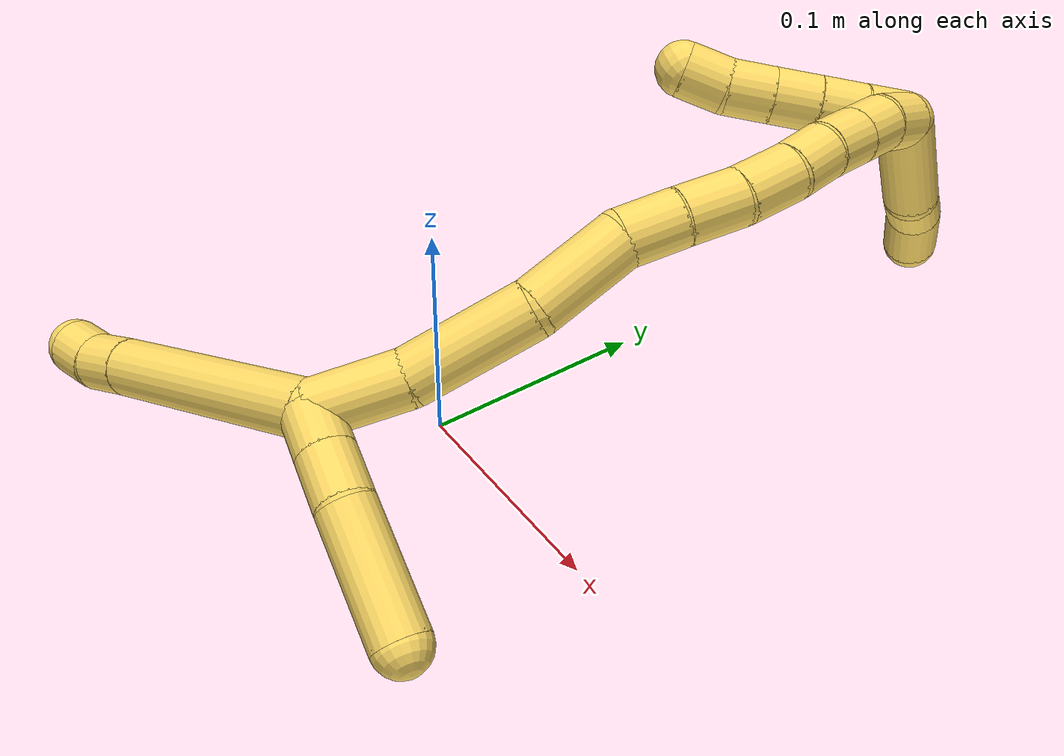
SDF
<sdf version="1.7">
 <world name="default">
  <model name="5">
   <static>0</static>
   <link name="5">
    <collision name="collision-cylinder-e_1_2_8">
     <pose>-0.028955 -0.026042 0.037899 0.602047 -0.561954 -0.178727</pose>
     <geometry><cylinder><radius>0.0125</radius><length>0.108681</length></cylinder></geometry>
     <surface>
      <friction><ode><mu>1.16</mu><mu2>1.16</mu2><slip1>0</slip1><slip2>0</slip2></ode></friction>
      <contact><ode><kp>1e+06</kp><kd>1</kd><max_vel>0</max_vel><min_depth>0.001</min_depth></ode></contact>
     </surface>
    </collision>
    <visual name="visual-cylinder-e_1_2_8">
     <pose>-0.028955 -0.026042 0.037899 0.602047 -0.561954 -0.178727</pose>
     <geometry><cylinder><radius>0.0125</radius><length>0.108681</length></cylinder></geometry>
     <material><ambient>1 0.858824 0.4 1</ambient></material>
    </visual>
    <collision name="collision-cylinder-e_2_8_9">
     <pose>-0.063923 -0.057085 0.082998 0.60706 -0.6012 -0.193578</pose>
     <geometry><cylinder><radius>0.0125</radius><length>0.021262</length></cylinder></geometry>
     <surface>
      <friction><ode><mu>1.16</mu><mu2>1.16</mu2><slip1>0</slip1><slip2>0</slip2></ode></friction>
      <contact><ode><kp>1e+06</kp><kd>1</kd><max_vel>0</max_vel><min_depth>0.001</min_depth></ode></contact>
     </surface>
    </collision>
    <visual name="visual-cylinder-e_2_8_9">
     <pose>-0.063923 -0.057085 0.082998 0.60706 -0.6012 -0.193578</pose>
     <geometry><cylinder><radius>0.0125</radius><length>0.021262</length></cylinder></geometry>
     <material><ambient>1 0.858824 0.4 1</ambient></material>
    </visual>
    <collision name="collision-cylinder-e_3_9_6">
     <pose>-0.074474 -0.065359 0.098522 0.374582 -0.469543 -0.090594</pose>
     <geometry><cylinder><radius>0.0125</radius><length>0.020057</length></cylinder></geometry>
     <surface>
      <friction><ode><mu>1.16</mu><mu2>1.16</mu2><slip1>0</slip1><slip2>0</slip2></ode></friction>
      <contact><ode><kp>1e+06</kp><kd>1</kd><max_vel>0</max_vel><min_depth>0.001</min_depth></ode></contact>
     </surface>
    </collision>
    <visual name="visual-cylinder-e_3_9_6">
     <pose>-0.074474 -0.065359 0.098522 0.374582 -0.469543 -0.090594</pose>
     <geometry><cylinder><radius>0.0125</radius><length>0.020057</length></cylinder></geometry>
     <material><ambient>1 0.858824 0.4 1</ambient></material>
    </visual>
    <collision name="collision-cylinder-e_1_2_10">
     <pose>-0.000169 9.2e-05 -0.010295 -3.13265 -0.016432 2.14452</pose>
     <geometry><cylinder><radius>0.0125</radius><length>0.020594</length></cylinder></geometry>
     <surface>
      <friction><ode><mu>1.16</mu><mu2>1.16</mu2><slip1>0</slip1><slip2>0</slip2></ode></friction>
      <contact><ode><kp>1e+06</kp><kd>1</kd><max_vel>0</max_vel><min_depth>0.001</min_depth></ode></contact>
     </surface>
    </collision>
    <visual name="visual-cylinder-e_1_2_10">
     <pose>-0.000169 9.2e-05 -0.010295 -3.13265 -0.016432 2.14452</pose>
     <geometry><cylinder><radius>0.0125</radius><length>0.020594</length></cylinder></geometry>
     <material><ambient>1 0.858824 0.4 1</ambient></material>
    </visual>
    <collision name="collision-cylinder-e_2_10_11">
     <pose>-0.000564 0.000354 -0.03219 -3.12695 -0.01944 1.85047</pose>
     <geometry><cylinder><radius>0.0125</radius><length>0.023206</length></cylinder></geometry>
     <surface>
      <friction><ode><mu>1.16</mu><mu2>1.16</mu2><slip1>0</slip1><slip2>0</slip2></ode></friction>
      <contact><ode><kp>1e+06</kp><kd>1</kd><max_vel>0</max_vel><min_depth>0.001</min_depth></ode></contact>
     </surface>
    </collision>
    <visual name="visual-cylinder-e_2_10_11">
     <pose>-0.000564 0.000354 -0.03219 -3.12695 -0.01944 1.85047</pose>
     <geometry><cylinder><radius>0.0125</radius><length>0.023206</length></cylinder></geometry>
     <material><ambient>1 0.858824 0.4 1</ambient></material>
    </visual>
    <collision name="collision-cylinder-e_3_11_5">
     <pose>-0.00553 0.00264 -0.071406 -3.06512 -0.169503 2.29538</pose>
     <geometry><cylinder><radius>0.0125</radius><length>0.0562</length></cylinder></geometry>
     <surface>
      <friction><ode><mu>1.16</mu><mu2>1.16</mu2><slip1>0</slip1><slip2>0</slip2></ode></friction>
      <contact><ode><kp>1e+06</kp><kd>1</kd><max_vel>0</max_vel><min_depth>0.001</min_depth></ode></contact>
     </surface>
    </collision>
    <visual name="visual-cylinder-e_3_11_5">
     <pose>-0.00553 0.00264 -0.071406 -3.06512 -0.169503 2.29538</pose>
     <geometry><cylinder><radius>0.0125</radius><length>0.0562</length></cylinder></geometry>
     <material><ambient>1 0.858824 0.4 1</ambient></material>
    </visual>
    <collision name="collision-cylinder-e_1_2_12">
     <pose>0.007813 0.018637 -0.002463 -1.70219 0.393873 -0.447626</pose>
     <geometry><cylinder><radius>0.0125</radius><length>0.040716</length></cylinder></geometry>
     <surface>
      <friction><ode><mu>1.16</mu><mu2>1.16</mu2><slip1>0</slip1><slip2>0</slip2></ode></friction>
      <contact><ode><kp>1e+06</kp><kd>1</kd><max_vel>0</max_vel><min_depth>0.001</min_depth></ode></contact>
     </surface>
    </collision>
    <visual name="visual-cylinder-e_1_2_12">
     <pose>0.007813 0.018637 -0.002463 -1.70219 0.393873 -0.447626</pose>
     <geometry><cylinder><radius>0.0125</radius><length>0.040716</length></cylinder></geometry>
     <material><ambient>1 0.858824 0.4 1</ambient></material>
    </visual>
    <collision name="collision-cylinder-e_2_12_13">
     <pose>0.029632 0.060923 -0.004226 -1.5412 0.534537 -0.519649</pose>
     <geometry><cylinder><radius>0.0125</radius><length>0.054989</length></cylinder></geometry>
     <surface>
      <friction><ode><mu>1.16</mu><mu2>1.16</mu2><slip1>0</slip1><slip2>0</slip2></ode></friction>
      <contact><ode><kp>1e+06</kp><kd>1</kd><max_vel>0</max_vel><min_depth>0.001</min_depth></ode></contact>
     </surface>
    </collision>
    <visual name="visual-cylinder-e_2_12_13">
     <pose>0.029632 0.060923 -0.004226 -1.5412 0.534537 -0.519649</pose>
     <geometry><cylinder><radius>0.0125</radius><length>0.054989</length></cylinder></geometry>
     <material><ambient>1 0.858824 0.4 1</ambient></material>
    </visual>
    <collision name="collision-cylinder-e_3_13_14">
     <pose>0.051863 0.104091 0.002703 -1.26191 0.381695 -0.280441</pose>
     <geometry><cylinder><radius>0.0125</radius><length>0.044155</length></cylinder></geometry>
     <surface>
      <friction><ode><mu>1.16</mu><mu2>1.16</mu2><slip1>0</slip1><slip2>0</slip2></ode></friction>
      <contact><ode><kp>1e+06</kp><kd>1</kd><max_vel>0</max_vel><min_depth>0.001</min_depth></ode></contact>
     </surface>
    </collision>
    <visual name="visual-cylinder-e_3_13_14">
     <pose>0.051863 0.104091 0.002703 -1.26191 0.381695 -0.280441</pose>
     <geometry><cylinder><radius>0.0125</radius><length>0.044155</length></cylinder></geometry>
     <material><ambient>1 0.858824 0.4 1</ambient></material>
    </visual>
    <collision name="collision-cylinder-e_4_14_15">
     <pose>0.063326 0.135954 0.009133 -1.55443 0.256553 -0.252433</pose>
     <geometry><cylinder><radius>0.0125</radius><length>0.025528</length></cylinder></geometry>
     <surface>
      <friction><ode><mu>1.16</mu><mu2>1.16</mu2><slip1>0</slip1><slip2>0</slip2></ode></friction>
      <contact><ode><kp>1e+06</kp><kd>1</kd><max_vel>0</max_vel><min_depth>0.001</min_depth></ode></contact>
     </surface>
    </collision>
    <visual name="visual-cylinder-e_4_14_15">
     <pose>0.063326 0.135954 0.009133 -1.55443 0.256553 -0.252433</pose>
     <geometry><cylinder><radius>0.0125</radius><length>0.025528</length></cylinder></geometry>
     <material><ambient>1 0.858824 0.4 1</ambient></material>
    </visual>
    <collision name="collision-cylinder-e_5_15_16">
     <pose>0.068801 0.161333 0.009935 -1.52481 0.169725 -0.162128</pose>
     <geometry><cylinder><radius>0.0125</radius><length>0.026477</length></cylinder></geometry>
     <surface>
      <friction><ode><mu>1.16</mu><mu2>1.16</mu2><slip1>0</slip1><slip2>0</slip2></ode></friction>
      <contact><ode><kp>1e+06</kp><kd>1</kd><max_vel>0</max_vel><min_depth>0.001</min_depth></ode></contact>
     </surface>
    </collision>
    <visual name="visual-cylinder-e_5_15_16">
     <pose>0.068801 0.161333 0.009935 -1.52481 0.169725 -0.162128</pose>
     <geometry><cylinder><radius>0.0125</radius><length>0.026477</length></cylinder></geometry>
     <material><ambient>1 0.858824 0.4 1</ambient></material>
    </visual>
    <collision name="collision-cylinder-e_6_16_17">
     <pose>0.07286 0.186965 0.012994 -1.37803 0.141134 -0.116312</pose>
     <geometry><cylinder><radius>0.0125</radius><length>0.025928</length></cylinder></geometry>
     <surface>
      <friction><ode><mu>1.16</mu><mu2>1.16</mu2><slip1>0</slip1><slip2>0</slip2></ode></friction>
      <contact><ode><kp>1e+06</kp><kd>1</kd><max_vel>0</max_vel><min_depth>0.001</min_depth></ode></contact>
     </surface>
    </collision>
    <visual name="visual-cylinder-e_6_16_17">
     <pose>0.07286 0.186965 0.012994 -1.37803 0.141134 -0.116312</pose>
     <geometry><cylinder><radius>0.0125</radius><length>0.025928</length></cylinder></geometry>
     <material><ambient>1 0.858824 0.4 1</ambient></material>
    </visual>
    <collision name="collision-cylinder-e_7_17_18">
     <pose>0.075162 0.209318 0.018906 -1.23063 0.04618 -0.032646</pose>
     <geometry><cylinder><radius>0.0125</radius><length>0.020721</length></cylinder></geometry>
     <surface>
      <friction><ode><mu>1.16</mu><mu2>1.16</mu2><slip1>0</slip1><slip2>0</slip2></ode></friction>
      <contact><ode><kp>1e+06</kp><kd>1</kd><max_vel>0</max_vel><min_depth>0.001</min_depth></ode></contact>
     </surface>
    </collision>
    <visual name="visual-cylinder-e_7_17_18">
     <pose>0.075162 0.209318 0.018906 -1.23063 0.04618 -0.032646</pose>
     <geometry><cylinder><radius>0.0125</radius><length>0.020721</length></cylinder></geometry>
     <material><ambient>1 0.858824 0.4 1</ambient></material>
    </visual>
    <collision name="collision-cylinder-e_8_18_19">
     <pose>0.074387 0.229085 0.025765 -1.24277 -0.117959 0.084506</pose>
     <geometry><cylinder><radius>0.0125</radius><length>0.021296</length></cylinder></geometry>
     <surface>
      <friction><ode><mu>1.16</mu><mu2>1.16</mu2><slip1>0</slip1><slip2>0</slip2></ode></friction>
      <contact><ode><kp>1e+06</kp><kd>1</kd><max_vel>0</max_vel><min_depth>0.001</min_depth></ode></contact>
     </surface>
    </collision>
    <visual name="visual-cylinder-e_8_18_19">
     <pose>0.074387 0.229085 0.025765 -1.24277 -0.117959 0.084506</pose>
     <geometry><cylinder><radius>0.0125</radius><length>0.021296</length></cylinder></geometry>
     <material><ambient>1 0.858824 0.4 1</ambient></material>
    </visual>
    <collision name="collision-cylinder-e_9_19_20">
     <pose>0.071985 0.248507 0.032387 -1.24162 -0.115017 0.082297</pose>
     <geometry><cylinder><radius>0.0125</radius><length>0.020023</length></cylinder></geometry>
     <surface>
      <friction><ode><mu>1.16</mu><mu2>1.16</mu2><slip1>0</slip1><slip2>0</slip2></ode></friction>
      <contact><ode><kp>1e+06</kp><kd>1</kd><max_vel>0</max_vel><min_depth>0.001</min_depth></ode></contact>
     </surface>
    </collision>
    <visual name="visual-cylinder-e_9_19_20">
     <pose>0.071985 0.248507 0.032387 -1.24162 -0.115017 0.082297</pose>
     <geometry><cylinder><radius>0.0125</radius><length>0.020023</length></cylinder></geometry>
     <material><ambient>1 0.858824 0.4 1</ambient></material>
    </visual>
    <collision name="collision-cylinder-e_10_20_1">
     <pose>0.067764 0.267249 0.037877 -1.33161 -0.309564 0.243892</pose>
     <geometry><cylinder><radius>0.0125</radius><length>0.020167</length></cylinder></geometry>
     <surface>
      <friction><ode><mu>1.16</mu><mu2>1.16</mu2><slip1>0</slip1><slip2>0</slip2></ode></friction>
      <contact><ode><kp>1e+06</kp><kd>1</kd><max_vel>0</max_vel><min_depth>0.001</min_depth></ode></contact>
     </surface>
    </collision>
    <visual name="visual-cylinder-e_10_20_1">
     <pose>0.067764 0.267249 0.037877 -1.33161 -0.309564 0.243892</pose>
     <geometry><cylinder><radius>0.0125</radius><length>0.020167</length></cylinder></geometry>
     <material><ambient>1 0.858824 0.4 1</ambient></material>
    </visual>
    <collision name="collision-cylinder-e_1_1_21">
     <pose>0.065067 0.267328 0.043928 1.18335 0.03747 0.025181</pose>
     <geometry><cylinder><radius>0.0125</radius><length>0.02</length></cylinder></geometry>
     <surface>
      <friction><ode><mu>1.16</mu><mu2>1.16</mu2><slip1>0</slip1><slip2>0</slip2></ode></friction>
      <contact><ode><kp>1e+06</kp><kd>1</kd><max_vel>0</max_vel><min_depth>0.001</min_depth></ode></contact>
     </surface>
    </collision>
    <visual name="visual-cylinder-e_1_1_21">
     <pose>0.065067 0.267328 0.043928 1.18335 0.03747 0.025181</pose>
     <geometry><cylinder><radius>0.0125</radius><length>0.02</length></cylinder></geometry>
     <material><ambient>1 0.858824 0.4 1</ambient></material>
    </visual>
    <collision name="collision-cylinder-e_2_21_22">
     <pose>0.065003 0.249274 0.052431 1.07796 -0.043884 -0.026247</pose>
     <geometry><cylinder><radius>0.0125</radius><length>0.02</length></cylinder></geometry>
     <surface>
      <friction><ode><mu>1.16</mu><mu2>1.16</mu2><slip1>0</slip1><slip2>0</slip2></ode></friction>
      <contact><ode><kp>1e+06</kp><kd>1</kd><max_vel>0</max_vel><min_depth>0.001</min_depth></ode></contact>
     </surface>
    </collision>
    <visual name="visual-cylinder-e_2_21_22">
     <pose>0.065003 0.249274 0.052431 1.07796 -0.043884 -0.026247</pose>
     <geometry><cylinder><radius>0.0125</radius><length>0.02</length></cylinder></geometry>
     <material><ambient>1 0.858824 0.4 1</ambient></material>
    </visual>
    <collision name="collision-cylinder-e_3_22_23">
     <pose>0.063924 0.23179 0.062076 1.05541 -0.064079 -0.037356</pose>
     <geometry><cylinder><radius>0.0125</radius><length>0.02</length></cylinder></geometry>
     <surface>
      <friction><ode><mu>1.16</mu><mu2>1.16</mu2><slip1>0</slip1><slip2>0</slip2></ode></friction>
      <contact><ode><kp>1e+06</kp><kd>1</kd><max_vel>0</max_vel><min_depth>0.001</min_depth></ode></contact>
     </surface>
    </collision>
    <visual name="visual-cylinder-e_3_22_23">
     <pose>0.063924 0.23179 0.062076 1.05541 -0.064079 -0.037356</pose>
     <geometry><cylinder><radius>0.0125</radius><length>0.02</length></cylinder></geometry>
     <material><ambient>1 0.858824 0.4 1</ambient></material>
    </visual>
    <collision name="collision-cylinder-e_4_23_24">
     <pose>0.062654 0.214453 0.071966 1.04935 -0.062964 -0.036451</pose>
     <geometry><cylinder><radius>0.0125</radius><length>0.02</length></cylinder></geometry>
     <surface>
      <friction><ode><mu>1.16</mu><mu2>1.16</mu2><slip1>0</slip1><slip2>0</slip2></ode></friction>
      <contact><ode><kp>1e+06</kp><kd>1</kd><max_vel>0</max_vel><min_depth>0.001</min_depth></ode></contact>
     </surface>
    </collision>
    <visual name="visual-cylinder-e_4_23_24">
     <pose>0.062654 0.214453 0.071966 1.04935 -0.062964 -0.036451</pose>
     <geometry><cylinder><radius>0.0125</radius><length>0.02</length></cylinder></geometry>
     <material><ambient>1 0.858824 0.4 1</ambient></material>
    </visual>
    <collision name="collision-cylinder-e_5_24_4">
     <pose>0.062572 0.198014 0.08319 0.894125 0.054699 0.02623</pose>
     <geometry><cylinder><radius>0.0125</radius><length>0.02</length></cylinder></geometry>
     <surface>
      <friction><ode><mu>1.16</mu><mu2>1.16</mu2><slip1>0</slip1><slip2>0</slip2></ode></friction>
      <contact><ode><kp>1e+06</kp><kd>1</kd><max_vel>0</max_vel><min_depth>0.001</min_depth></ode></contact>
     </surface>
    </collision>
    <visual name="visual-cylinder-e_5_24_4">
     <pose>0.062572 0.198014 0.08319 0.894125 0.054699 0.02623</pose>
     <geometry><cylinder><radius>0.0125</radius><length>0.02</length></cylinder></geometry>
     <material><ambient>1 0.858824 0.4 1</ambient></material>
    </visual>
    <collision name="collision-cylinder-e_1_1_25">
     <pose>0.04164 0.287341 0.036252 -1.91856 -1.10995 1.44801</pose>
     <geometry><cylinder><radius>0.0125</radius><length>0.051476</length></cylinder></geometry>
     <surface>
      <friction><ode><mu>1.16</mu><mu2>1.16</mu2><slip1>0</slip1><slip2>0</slip2></ode></friction>
      <contact><ode><kp>1e+06</kp><kd>1</kd><max_vel>0</max_vel><min_depth>0.001</min_depth></ode></contact>
     </surface>
    </collision>
    <visual name="visual-cylinder-e_1_1_25">
     <pose>0.04164 0.287341 0.036252 -1.91856 -1.10995 1.44801</pose>
     <geometry><cylinder><radius>0.0125</radius><length>0.051476</length></cylinder></geometry>
     <material><ambient>1 0.858824 0.4 1</ambient></material>
    </visual>
    <collision name="collision-cylinder-e_2_25_26">
     <pose>0.010146 0.303936 0.03368 -1.34685 -0.954084 0.782248</pose>
     <geometry><cylinder><radius>0.0125</radius><length>0.020694</length></cylinder></geometry>
     <surface>
      <friction><ode><mu>1.16</mu><mu2>1.16</mu2><slip1>0</slip1><slip2>0</slip2></ode></friction>
      <contact><ode><kp>1e+06</kp><kd>1</kd><max_vel>0</max_vel><min_depth>0.001</min_depth></ode></contact>
     </surface>
    </collision>
    <visual name="visual-cylinder-e_2_25_26">
     <pose>0.010146 0.303936 0.03368 -1.34685 -0.954084 0.782248</pose>
     <geometry><cylinder><radius>0.0125</radius><length>0.020694</length></cylinder></geometry>
     <material><ambient>1 0.858824 0.4 1</ambient></material>
    </visual>
    <collision name="collision-cylinder-e_3_26_3">
     <pose>-0.011165 0.315062 0.035058 -1.56153 -1.18077 1.17222</pose>
     <geometry><cylinder><radius>0.0125</radius><length>0.02783</length></cylinder></geometry>
     <surface>
      <friction><ode><mu>1.16</mu><mu2>1.16</mu2><slip1>0</slip1><slip2>0</slip2></ode></friction>
      <contact><ode><kp>1e+06</kp><kd>1</kd><max_vel>0</max_vel><min_depth>0.001</min_depth></ode></contact>
     </surface>
    </collision>
    <visual name="visual-cylinder-e_3_26_3">
     <pose>-0.011165 0.315062 0.035058 -1.56153 -1.18077 1.17222</pose>
     <geometry><cylinder><radius>0.0125</radius><length>0.02783</length></cylinder></geometry>
     <material><ambient>1 0.858824 0.4 1</ambient></material>
    </visual>
    <collision name="collision-sphere-3">
     <pose>-0.024035 0.320352 0.035107 0 -0 0</pose>
     <geometry><sphere><radius>0.0125</radius></sphere></geometry>
     <surface>
      <friction><ode><mu>1.16</mu><mu2>1.16</mu2><slip1>0</slip1><slip2>0</slip2></ode></friction>
      <contact><ode><kp>1e+06</kp><kd>1</kd><max_vel>0</max_vel><min_depth>0.001</min_depth></ode></contact>
     </surface>
    </collision>
    <visual name="visual-sphere-3">
     <pose>-0.024035 0.320352 0.035107 0 -0 0</pose>
     <geometry><sphere><radius>0.0125</radius></sphere></geometry>
     <material><ambient>1 0.858824 0.4 1</ambient></material>
    </visual>
    <collision name="collision-sphere-26">
     <pose>0.001705 0.309771 0.035009 0 -0 0</pose>
     <geometry><sphere><radius>0.0125</radius></sphere></geometry>
     <surface>
      <friction><ode><mu>1.16</mu><mu2>1.16</mu2><slip1>0</slip1><slip2>0</slip2></ode></friction>
      <contact><ode><kp>1e+06</kp><kd>1</kd><max_vel>0</max_vel><min_depth>0.001</min_depth></ode></contact>
     </surface>
    </collision>
    <visual name="visual-sphere-26">
     <pose>0.001705 0.309771 0.035009 0 -0 0</pose>
     <geometry><sphere><radius>0.0125</radius></sphere></geometry>
     <material><ambient>1 0.858824 0.4 1</ambient></material>
    </visual>
    <collision name="collision-sphere-25">
     <pose>0.018587 0.298102 0.032351 0 -0 0</pose>
     <geometry><sphere><radius>0.0125</radius></sphere></geometry>
     <surface>
      <friction><ode><mu>1.16</mu><mu2>1.16</mu2><slip1>0</slip1><slip2>0</slip2></ode></friction>
      <contact><ode><kp>1e+06</kp><kd>1</kd><max_vel>0</max_vel><min_depth>0.001</min_depth></ode></contact>
     </surface>
    </collision>
    <visual name="visual-sphere-25">
     <pose>0.018587 0.298102 0.032351 0 -0 0</pose>
     <geometry><sphere><radius>0.0125</radius></sphere></geometry>
     <material><ambient>1 0.858824 0.4 1</ambient></material>
    </visual>
    <collision name="collision-sphere-4">
     <pose>0.063118 0.190229 0.089443 0 -0 0</pose>
     <geometry><sphere><radius>0.0125</radius></sphere></geometry>
     <surface>
      <friction><ode><mu>1.16</mu><mu2>1.16</mu2><slip1>0</slip1><slip2>0</slip2></ode></friction>
      <contact><ode><kp>1e+06</kp><kd>1</kd><max_vel>0</max_vel><min_depth>0.001</min_depth></ode></contact>
     </surface>
    </collision>
    <visual name="visual-sphere-4">
     <pose>0.063118 0.190229 0.089443 0 -0 0</pose>
     <geometry><sphere><radius>0.0125</radius></sphere></geometry>
     <material><ambient>1 0.858824 0.4 1</ambient></material>
    </visual>
    <collision name="collision-sphere-24">
     <pose>0.062025 0.205799 0.076938 0 -0 0</pose>
     <geometry><sphere><radius>0.0125</radius></sphere></geometry>
     <surface>
      <friction><ode><mu>1.16</mu><mu2>1.16</mu2><slip1>0</slip1><slip2>0</slip2></ode></friction>
      <contact><ode><kp>1e+06</kp><kd>1</kd><max_vel>0</max_vel><min_depth>0.001</min_depth></ode></contact>
     </surface>
    </collision>
    <visual name="visual-sphere-24">
     <pose>0.062025 0.205799 0.076938 0 -0 0</pose>
     <geometry><sphere><radius>0.0125</radius></sphere></geometry>
     <material><ambient>1 0.858824 0.4 1</ambient></material>
    </visual>
    <collision name="collision-sphere-23">
     <pose>0.063283 0.223106 0.066995 0 -0 0</pose>
     <geometry><sphere><radius>0.0125</radius></sphere></geometry>
     <surface>
      <friction><ode><mu>1.16</mu><mu2>1.16</mu2><slip1>0</slip1><slip2>0</slip2></ode></friction>
      <contact><ode><kp>1e+06</kp><kd>1</kd><max_vel>0</max_vel><min_depth>0.001</min_depth></ode></contact>
     </surface>
    </collision>
    <visual name="visual-sphere-23">
     <pose>0.063283 0.223106 0.066995 0 -0 0</pose>
     <geometry><sphere><radius>0.0125</radius></sphere></geometry>
     <material><ambient>1 0.858824 0.4 1</ambient></material>
    </visual>
    <collision name="collision-sphere-22">
     <pose>0.064564 0.240473 0.057157 0 -0 0</pose>
     <geometry><sphere><radius>0.0125</radius></sphere></geometry>
     <surface>
      <friction><ode><mu>1.16</mu><mu2>1.16</mu2><slip1>0</slip1><slip2>0</slip2></ode></friction>
      <contact><ode><kp>1e+06</kp><kd>1</kd><max_vel>0</max_vel><min_depth>0.001</min_depth></ode></contact>
     </surface>
    </collision>
    <visual name="visual-sphere-22">
     <pose>0.064564 0.240473 0.057157 0 -0 0</pose>
     <geometry><sphere><radius>0.0125</radius></sphere></geometry>
     <material><ambient>1 0.858824 0.4 1</ambient></material>
    </visual>
    <collision name="collision-sphere-21">
     <pose>0.065442 0.258076 0.047704 0 -0 0</pose>
     <geometry><sphere><radius>0.0125</radius></sphere></geometry>
     <surface>
      <friction><ode><mu>1.16</mu><mu2>1.16</mu2><slip1>0</slip1><slip2>0</slip2></ode></friction>
      <contact><ode><kp>1e+06</kp><kd>1</kd><max_vel>0</max_vel><min_depth>0.001</min_depth></ode></contact>
     </surface>
    </collision>
    <visual name="visual-sphere-21">
     <pose>0.065442 0.258076 0.047704 0 -0 0</pose>
     <geometry><sphere><radius>0.0125</radius></sphere></geometry>
     <material><ambient>1 0.858824 0.4 1</ambient></material>
    </visual>
    <collision name="collision-sphere-1">
     <pose>0.064692 0.27658 0.040153 0 -0 0</pose>
     <geometry><sphere><radius>0.0125</radius></sphere></geometry>
     <surface>
      <friction><ode><mu>1.16</mu><mu2>1.16</mu2><slip1>0</slip1><slip2>0</slip2></ode></friction>
      <contact><ode><kp>1e+06</kp><kd>1</kd><max_vel>0</max_vel><min_depth>0.001</min_depth></ode></contact>
     </surface>
    </collision>
    <visual name="visual-sphere-1">
     <pose>0.064692 0.27658 0.040153 0 -0 0</pose>
     <geometry><sphere><radius>0.0125</radius></sphere></geometry>
     <material><ambient>1 0.858824 0.4 1</ambient></material>
    </visual>
    <collision name="collision-sphere-11">
     <pose>-0.000789 0.000524 -0.043789 0 -0 0</pose>
     <geometry><sphere><radius>0.0125</radius></sphere></geometry>
     <surface>
      <friction><ode><mu>1.16</mu><mu2>1.16</mu2><slip1>0</slip1><slip2>0</slip2></ode></friction>
      <contact><ode><kp>1e+06</kp><kd>1</kd><max_vel>0</max_vel><min_depth>0.001</min_depth></ode></contact>
     </surface>
    </collision>
    <visual name="visual-sphere-11">
     <pose>-0.000789 0.000524 -0.043789 0 -0 0</pose>
     <geometry><sphere><radius>0.0125</radius></sphere></geometry>
     <material><ambient>1 0.858824 0.4 1</ambient></material>
    </visual>
    <collision name="collision-sphere-10">
     <pose>-0.000338 0.000184 -0.020591 0 -0 0</pose>
     <geometry><sphere><radius>0.0125</radius></sphere></geometry>
     <surface>
      <friction><ode><mu>1.16</mu><mu2>1.16</mu2><slip1>0</slip1><slip2>0</slip2></ode></friction>
      <contact><ode><kp>1e+06</kp><kd>1</kd><max_vel>0</max_vel><min_depth>0.001</min_depth></ode></contact>
     </surface>
    </collision>
    <visual name="visual-sphere-10">
     <pose>-0.000338 0.000184 -0.020591 0 -0 0</pose>
     <geometry><sphere><radius>0.0125</radius></sphere></geometry>
     <material><ambient>1 0.858824 0.4 1</ambient></material>
    </visual>
    <collision name="collision-sphere-6">
     <pose>-0.079012 -0.068631 0.106845 0 -0 0</pose>
     <geometry><sphere><radius>0.0125</radius></sphere></geometry>
     <surface>
      <friction><ode><mu>1.16</mu><mu2>1.16</mu2><slip1>0</slip1><slip2>0</slip2></ode></friction>
      <contact><ode><kp>1e+06</kp><kd>1</kd><max_vel>0</max_vel><min_depth>0.001</min_depth></ode></contact>
     </surface>
    </collision>
    <visual name="visual-sphere-6">
     <pose>-0.079012 -0.068631 0.106845 0 -0 0</pose>
     <geometry><sphere><radius>0.0125</radius></sphere></geometry>
     <material><ambient>1 0.858824 0.4 1</ambient></material>
    </visual>
    <collision name="collision-sphere-9">
     <pose>-0.069936 -0.062087 0.090199 0 -0 0</pose>
     <geometry><sphere><radius>0.0125</radius></sphere></geometry>
     <surface>
      <friction><ode><mu>1.16</mu><mu2>1.16</mu2><slip1>0</slip1><slip2>0</slip2></ode></friction>
      <contact><ode><kp>1e+06</kp><kd>1</kd><max_vel>0</max_vel><min_depth>0.001</min_depth></ode></contact>
     </surface>
    </collision>
    <visual name="visual-sphere-9">
     <pose>-0.069936 -0.062087 0.090199 0 -0 0</pose>
     <geometry><sphere><radius>0.0125</radius></sphere></geometry>
     <material><ambient>1 0.858824 0.4 1</ambient></material>
    </visual>
    <collision name="collision-sphere-2">
     <geometry><sphere><radius>0.0125</radius></sphere></geometry>
     <surface>
      <friction><ode><mu>1.16</mu><mu2>1.16</mu2><slip1>0</slip1><slip2>0</slip2></ode></friction>
      <contact><ode><kp>1e+06</kp><kd>1</kd><max_vel>0</max_vel><min_depth>0.001</min_depth></ode></contact>
     </surface>
    </collision>
    <visual name="visual-sphere-2">
     <geometry><sphere><radius>0.0125</radius></sphere></geometry>
     <material><ambient>1 0.858824 0.4 1</ambient></material>
    </visual>
    <collision name="collision-sphere-19">
     <pose>0.073134 0.239095 0.029172 0 -0 0</pose>
     <geometry><sphere><radius>0.0125</radius></sphere></geometry>
     <surface>
      <friction><ode><mu>1.16</mu><mu2>1.16</mu2><slip1>0</slip1><slip2>0</slip2></ode></friction>
      <contact><ode><kp>1e+06</kp><kd>1</kd><max_vel>0</max_vel><min_depth>0.001</min_depth></ode></contact>
     </surface>
    </collision>
    <visual name="visual-sphere-19">
     <pose>0.073134 0.239095 0.029172 0 -0 0</pose>
     <geometry><sphere><radius>0.0125</radius></sphere></geometry>
     <material><ambient>1 0.858824 0.4 1</ambient></material>
    </visual>
    <collision name="collision-sphere-8">
     <pose>-0.05791 -0.052084 0.075798 0 -0 0</pose>
     <geometry><sphere><radius>0.0125</radius></sphere></geometry>
     <surface>
      <friction><ode><mu>1.16</mu><mu2>1.16</mu2><slip1>0</slip1><slip2>0</slip2></ode></friction>
      <contact><ode><kp>1e+06</kp><kd>1</kd><max_vel>0</max_vel><min_depth>0.001</min_depth></ode></contact>
     </surface>
    </collision>
    <visual name="visual-sphere-8">
     <pose>-0.05791 -0.052084 0.075798 0 -0 0</pose>
     <geometry><sphere><radius>0.0125</radius></sphere></geometry>
     <material><ambient>1 0.858824 0.4 1</ambient></material>
    </visual>
    <collision name="collision-sphere-5">
     <pose>-0.01027 0.004756 -0.099022 0 -0 0</pose>
     <geometry><sphere><radius>0.0125</radius></sphere></geometry>
     <surface>
      <friction><ode><mu>1.16</mu><mu2>1.16</mu2><slip1>0</slip1><slip2>0</slip2></ode></friction>
      <contact><ode><kp>1e+06</kp><kd>1</kd><max_vel>0</max_vel><min_depth>0.001</min_depth></ode></contact>
     </surface>
    </collision>
    <visual name="visual-sphere-5">
     <pose>-0.01027 0.004756 -0.099022 0 -0 0</pose>
     <geometry><sphere><radius>0.0125</radius></sphere></geometry>
     <material><ambient>1 0.858824 0.4 1</ambient></material>
    </visual>
    <collision name="collision-sphere-12">
     <pose>0.015625 0.037274 -0.004926 0 -0 0</pose>
     <geometry><sphere><radius>0.0125</radius></sphere></geometry>
     <surface>
      <friction><ode><mu>1.16</mu><mu2>1.16</mu2><slip1>0</slip1><slip2>0</slip2></ode></friction>
      <contact><ode><kp>1e+06</kp><kd>1</kd><max_vel>0</max_vel><min_depth>0.001</min_depth></ode></contact>
     </surface>
    </collision>
    <visual name="visual-sphere-12">
     <pose>0.015625 0.037274 -0.004926 0 -0 0</pose>
     <geometry><sphere><radius>0.0125</radius></sphere></geometry>
     <material><ambient>1 0.858824 0.4 1</ambient></material>
    </visual>
    <collision name="collision-sphere-13">
     <pose>0.043639 0.084572 -0.003526 0 -0 0</pose>
     <geometry><sphere><radius>0.0125</radius></sphere></geometry>
     <surface>
      <friction><ode><mu>1.16</mu><mu2>1.16</mu2><slip1>0</slip1><slip2>0</slip2></ode></friction>
      <contact><ode><kp>1e+06</kp><kd>1</kd><max_vel>0</max_vel><min_depth>0.001</min_depth></ode></contact>
     </surface>
    </collision>
    <visual name="visual-sphere-13">
     <pose>0.043639 0.084572 -0.003526 0 -0 0</pose>
     <geometry><sphere><radius>0.0125</radius></sphere></geometry>
     <material><ambient>1 0.858824 0.4 1</ambient></material>
    </visual>
    <collision name="collision-sphere-14">
     <pose>0.060087 0.12361 0.008931 0 -0 0</pose>
     <geometry><sphere><radius>0.0125</radius></sphere></geometry>
     <surface>
      <friction><ode><mu>1.16</mu><mu2>1.16</mu2><slip1>0</slip1><slip2>0</slip2></ode></friction>
      <contact><ode><kp>1e+06</kp><kd>1</kd><max_vel>0</max_vel><min_depth>0.001</min_depth></ode></contact>
     </surface>
    </collision>
    <visual name="visual-sphere-14">
     <pose>0.060087 0.12361 0.008931 0 -0 0</pose>
     <geometry><sphere><radius>0.0125</radius></sphere></geometry>
     <material><ambient>1 0.858824 0.4 1</ambient></material>
    </visual>
    <collision name="collision-sphere-15">
     <pose>0.066564 0.148299 0.009335 0 -0 0</pose>
     <geometry><sphere><radius>0.0125</radius></sphere></geometry>
     <surface>
      <friction><ode><mu>1.16</mu><mu2>1.16</mu2><slip1>0</slip1><slip2>0</slip2></ode></friction>
      <contact><ode><kp>1e+06</kp><kd>1</kd><max_vel>0</max_vel><min_depth>0.001</min_depth></ode></contact>
     </surface>
    </collision>
    <visual name="visual-sphere-15">
     <pose>0.066564 0.148299 0.009335 0 -0 0</pose>
     <geometry><sphere><radius>0.0125</radius></sphere></geometry>
     <material><ambient>1 0.858824 0.4 1</ambient></material>
    </visual>
    <collision name="collision-sphere-16">
     <pose>0.071037 0.174367 0.010535 0 -0 0</pose>
     <geometry><sphere><radius>0.0125</radius></sphere></geometry>
     <surface>
      <friction><ode><mu>1.16</mu><mu2>1.16</mu2><slip1>0</slip1><slip2>0</slip2></ode></friction>
      <contact><ode><kp>1e+06</kp><kd>1</kd><max_vel>0</max_vel><min_depth>0.001</min_depth></ode></contact>
     </surface>
    </collision>
    <visual name="visual-sphere-16">
     <pose>0.071037 0.174367 0.010535 0 -0 0</pose>
     <geometry><sphere><radius>0.0125</radius></sphere></geometry>
     <material><ambient>1 0.858824 0.4 1</ambient></material>
    </visual>
    <collision name="collision-sphere-17">
     <pose>0.074684 0.199562 0.015452 0 -0 0</pose>
     <geometry><sphere><radius>0.0125</radius></sphere></geometry>
     <surface>
      <friction><ode><mu>1.16</mu><mu2>1.16</mu2><slip1>0</slip1><slip2>0</slip2></ode></friction>
      <contact><ode><kp>1e+06</kp><kd>1</kd><max_vel>0</max_vel><min_depth>0.001</min_depth></ode></contact>
     </surface>
    </collision>
    <visual name="visual-sphere-17">
     <pose>0.074684 0.199562 0.015452 0 -0 0</pose>
     <geometry><sphere><radius>0.0125</radius></sphere></geometry>
     <material><ambient>1 0.858824 0.4 1</ambient></material>
    </visual>
    <collision name="collision-sphere-18">
     <pose>0.07564 0.219075 0.022359 0 -0 0</pose>
     <geometry><sphere><radius>0.0125</radius></sphere></geometry>
     <surface>
      <friction><ode><mu>1.16</mu><mu2>1.16</mu2><slip1>0</slip1><slip2>0</slip2></ode></friction>
      <contact><ode><kp>1e+06</kp><kd>1</kd><max_vel>0</max_vel><min_depth>0.001</min_depth></ode></contact>
     </surface>
    </collision>
    <visual name="visual-sphere-18">
     <pose>0.07564 0.219075 0.022359 0 -0 0</pose>
     <geometry><sphere><radius>0.0125</radius></sphere></geometry>
     <material><ambient>1 0.858824 0.4 1</ambient></material>
    </visual>
    <collision name="collision-sphere-20">
     <pose>0.070836 0.257918 0.035602 0 -0 0</pose>
     <geometry><sphere><radius>0.0125</radius></sphere></geometry>
     <surface>
      <friction><ode><mu>1.16</mu><mu2>1.16</mu2><slip1>0</slip1><slip2>0</slip2></ode></friction>
      <contact><ode><kp>1e+06</kp><kd>1</kd><max_vel>0</max_vel><min_depth>0.001</min_depth></ode></contact>
     </surface>
    </collision>
    <visual name="visual-sphere-20">
     <pose>0.070836 0.257918 0.035602 0 -0 0</pose>
     <geometry><sphere><radius>0.0125</radius></sphere></geometry>
     <material><ambient>1 0.858824 0.4 1</ambient></material>
    </visual>
    <inertial>
     <pose>0.023486 0.118328 0.020894 0 -0 0</pose>
     <mass>0.75</mass>
     <inertia>
      <ixx>0.000115</ixx>
      <ixy>0</ixy>
      <ixz>0</ixz>
      <iyy>0.000147</iyy>
      <iyz>0</iyz>
      <izz>8.3e-05</izz>
     </inertia>
    </inertial>
   </link>
   <pose>0.011307 -0.064849 0.051235 -0.284781 -1.26614 0.091794</pose>
  </model>
 </world>
</sdf>
